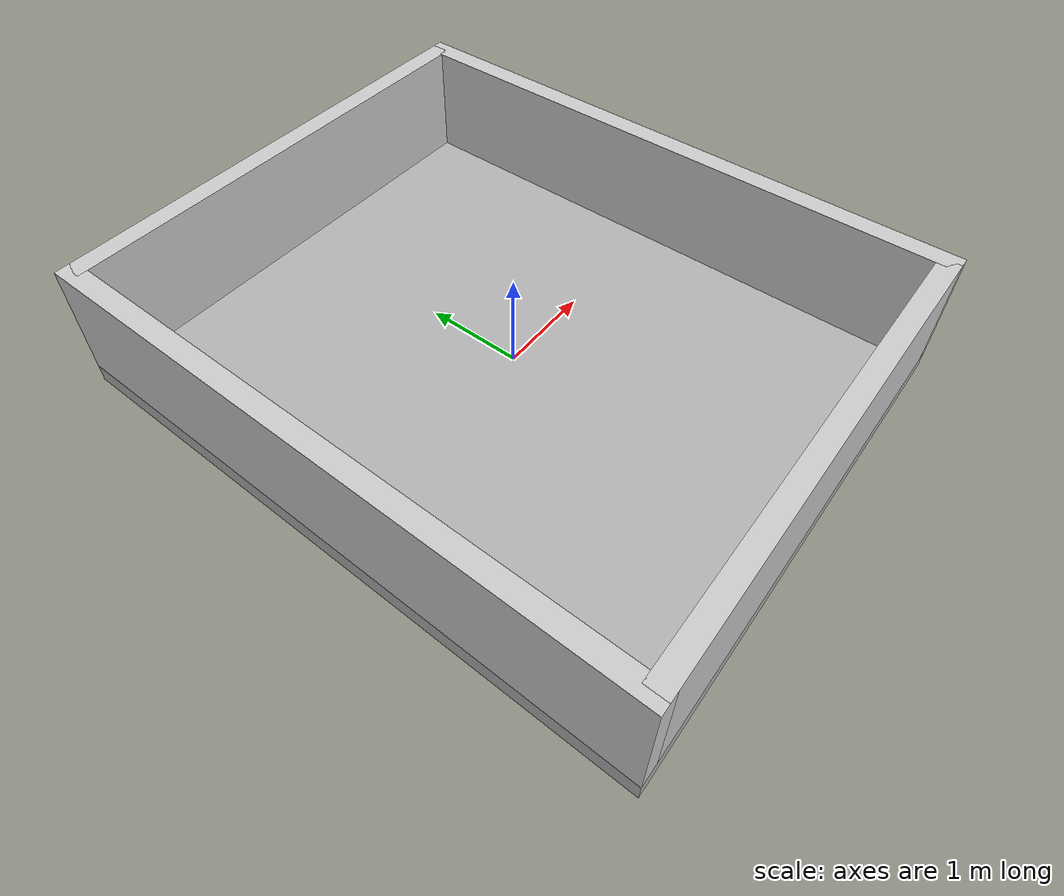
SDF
<?xml version="1.0" ?>
<sdf version="1.9">
  <world name="single_room">
    <gravity>0 0 -9.8</gravity>

    <physics name="default_physics" default="true" type="dart">
      <max_step_size>0.001</max_step_size>
      <real_time_factor>1.0</real_time_factor>
    </physics>

    <!-- System plugins — must be declared explicitly (like the house world);
         without them the sensors system never loads and IMU/lidar stay silent -->
    <plugin filename="gz-sim-physics-system" name="gz::sim::systems::Physics"/>
    <plugin filename="gz-sim-user-commands-system" name="gz::sim::systems::UserCommands"/>
    <plugin filename="gz-sim-scene-broadcaster-system" name="gz::sim::systems::SceneBroadcaster"/>
    <plugin filename="gz-sim-sensors-system" name="gz::sim::systems::Sensors">
      <render_engine>ogre2</render_engine>
    </plugin>
    <plugin filename="gz-sim-imu-system" name="gz::sim::systems::Imu"/>

    <scene>
      <ambient>0.5 0.5 0.5</ambient>
      <background>0.6 0.6 0.6</background>
      <shadows>0</shadows>
    </scene>

    <light name="sun" type="directional">
      <pose>0 0 3 0 0 0</pose>
      <diffuse>1 1 1 1</diffuse>
      <specular>0.1 0.1 0.1 1</specular>
      <direction>-0.5 0.1 -0.9</direction>
    </light>

    <!-- Floor: 5.05 x 6.15 m slab, top surface at z=0 -->
    <model name="floor">
      <static>true</static>
      <link name="floor_link">
        <collision name="floor_collision">
          <geometry>
            <box>
              <size>5.05 6.15 0.2</size>
            </box>
          </geometry>
          <surface>
            <friction>
              <ode>
                <mu>1.0</mu>
                <mu2>1.0</mu2>
              </ode>
            </friction>
          </surface>
        </collision>
        <visual name="floor_visual">
          <geometry>
            <box>
              <size>5.05 6.15 0.2</size>
            </box>
          </geometry>
          <material>
            <ambient>0.7 0.7 0.7 1</ambient>
            <diffuse>0.7 0.7 0.7 1</diffuse>
            <specular>0.05 0.05 0.05 1</specular>
          </material>
        </visual>
      </link>
      <pose>0 0 -0.1 0 0 0</pose>
    </model>

    <!-- Walls: 0.2 m thick, 1.2 m high, interior 4.65 x 5.75 m -->
    <!-- North wall (y=+2.875) -->
    <model name="wall_north">
      <static>true</static>
      <link name="link">
        <collision name="collision">
          <geometry><box><size>4.85 0.2 1.2</size></box></geometry>
        </collision>
        <visual name="visual">
          <geometry><box><size>4.85 0.2 1.2</size></box></geometry>
          <material>
            <ambient>0.8 0.8 0.8 1</ambient>
            <diffuse>0.8 0.8 0.8 1</diffuse>
          </material>
        </visual>
      </link>
      <pose>0 2.975 0.6 0 0 0</pose>
    </model>

    <!-- South wall (y=-2.875) -->
    <model name="wall_south">
      <static>true</static>
      <link name="link">
        <collision name="collision">
          <geometry><box><size>4.85 0.2 1.2</size></box></geometry>
        </collision>
        <visual name="visual">
          <geometry><box><size>4.85 0.2 1.2</size></box></geometry>
          <material>
            <ambient>0.8 0.8 0.8 1</ambient>
            <diffuse>0.8 0.8 0.8 1</diffuse>
          </material>
        </visual>
      </link>
      <pose>0 -2.975 0.6 0 0 0</pose>
    </model>

    <!-- East wall (x=+2.325) -->
    <model name="wall_east">
      <static>true</static>
      <link name="link">
        <collision name="collision">
          <geometry><box><size>0.2 6.15 1.2</size></box></geometry>
        </collision>
        <visual name="visual">
          <geometry><box><size>0.2 6.15 1.2</size></box></geometry>
          <material>
            <ambient>0.8 0.8 0.8 1</ambient>
            <diffuse>0.8 0.8 0.8 1</diffuse>
          </material>
        </visual>
      </link>
      <pose>2.425 0 0.6 0 0 0</pose>
    </model>

    <!-- West wall (x=-2.325) -->
    <model name="wall_west">
      <static>true</static>
      <link name="link">
        <collision name="collision">
          <geometry><box><size>0.2 6.15 1.2</size></box></geometry>
        </collision>
        <visual name="visual">
          <geometry><box><size>0.2 6.15 1.2</size></box></geometry>
          <material>
            <ambient>0.8 0.8 0.8 1</ambient>
            <diffuse>0.8 0.8 0.8 1</diffuse>
          </material>
        </visual>
      </link>
      <pose>-2.425 0 0.6 0 0 0</pose>
    </model>

  </world>
</sdf>
